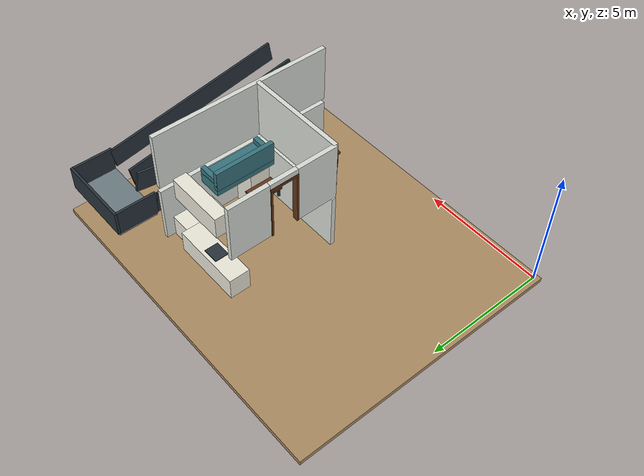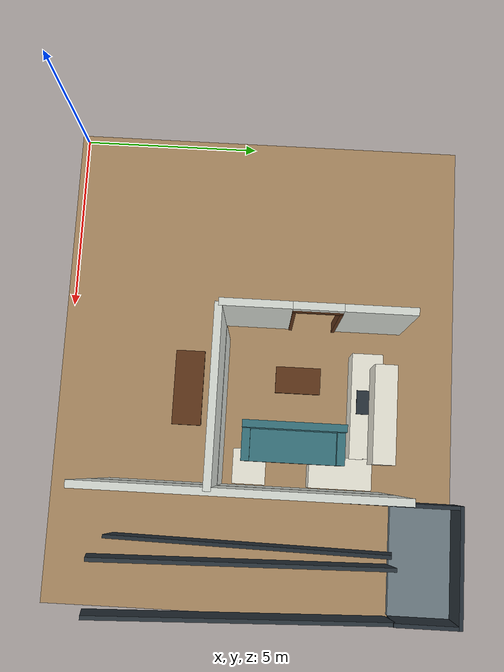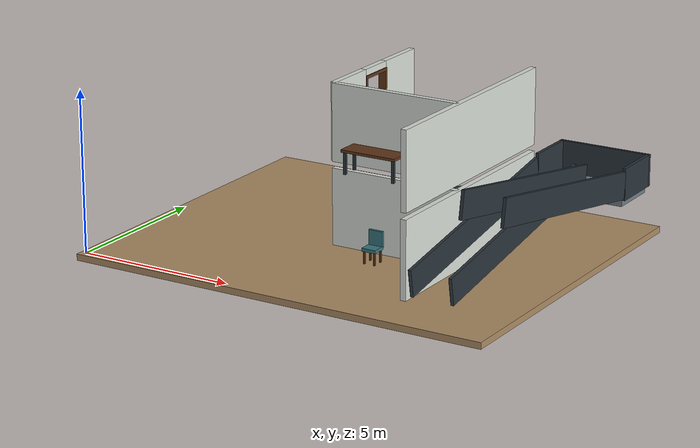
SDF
<sdf version="1.7">
 <model name="home_indoor">
  <static>true</static>
  <link name="floor_ground">
   <pose>6.6 5.4 -0.1 0 0 0</pose>
   <collision name="floor_ground_collision">
    <geometry><box><size>13.6 11.2 0.2</size></box></geometry>
    <surface><friction><ode><mu>1.0</mu><mu2>1.0</mu2></ode></friction></surface>
   </collision>
   <visual name="floor_ground_visual">
    <geometry><box><size>13.6 11.2 0.2</size></box></geometry>
    <material><ambient>0.68 0.55 0.39 1</ambient><diffuse>0.68 0.55 0.39 1</diffuse></material>
   </visual>
  </link>
  <link name="f0_ramp_door_north">
   <pose>10 5.215 1.2 0 0 0</pose>
   <collision name="f0_ramp_door_north_collision">
    <geometry><box><size>0.18 7.57 2.4</size></box></geometry>
    <surface><friction><ode><mu>1.0</mu><mu2>1.0</mu2></ode></friction></surface>
   </collision>
   <visual name="f0_ramp_door_north_visual">
    <geometry><box><size>0.18 7.57 2.4</size></box></geometry>
    <material><ambient>0.86 0.88 0.85 1</ambient><diffuse>0.86 0.88 0.85 1</diffuse></material>
   </visual>
  </link>
  <link name="f0_cross_wall_7.9">
   <pose>7.9 4.5 1.2 0 0 0</pose>
   <collision name="f0_cross_wall_7.9_collision">
    <geometry><box><size>4.2 0.18 2.4</size></box></geometry>
    <surface><friction><ode><mu>1.0</mu><mu2>1.0</mu2></ode></friction></surface>
   </collision>
   <visual name="f0_cross_wall_7.9_visual">
    <geometry><box><size>4.2 0.18 2.4</size></box></geometry>
    <material><ambient>0.86 0.88 0.85 1</ambient><diffuse>0.86 0.88 0.85 1</diffuse></material>
   </visual>
  </link>
  <link name="f1_ramp_door_north">
   <pose>10 5.215 3.8 0 0 0</pose>
   <collision name="f1_ramp_door_north_collision">
    <geometry><box><size>0.18 7.57 2.4</size></box></geometry>
    <surface><friction><ode><mu>1.0</mu><mu2>1.0</mu2></ode></friction></surface>
   </collision>
   <visual name="f1_ramp_door_north_visual">
    <geometry><box><size>0.18 7.57 2.4</size></box></geometry>
    <material><ambient>0.86 0.88 0.85 1</ambient><diffuse>0.86 0.88 0.85 1</diffuse></material>
   </visual>
  </link>
  <link name="f1_room_5.8_1_south">
   <pose>5.8 5.335 3.8 0 0 0</pose>
   <collision name="f1_room_5.8_1_south_collision">
    <geometry><box><size>0.18 1.67 2.4</size></box></geometry>
    <surface><friction><ode><mu>1.0</mu><mu2>1.0</mu2></ode></friction></surface>
   </collision>
   <visual name="f1_room_5.8_1_south_visual">
    <geometry><box><size>0.18 1.67 2.4</size></box></geometry>
    <material><ambient>0.86 0.88 0.85 1</ambient><diffuse>0.86 0.88 0.85 1</diffuse></material>
   </visual>
  </link>
  <link name="f1_room_5.8_1_north">
   <pose>5.8 8.165 3.8 0 0 0</pose>
   <collision name="f1_room_5.8_1_north_collision">
    <geometry><box><size>0.18 1.67 2.4</size></box></geometry>
    <surface><friction><ode><mu>1.0</mu><mu2>1.0</mu2></ode></friction></surface>
   </collision>
   <visual name="f1_room_5.8_1_north_visual">
    <geometry><box><size>0.18 1.67 2.4</size></box></geometry>
    <material><ambient>0.86 0.88 0.85 1</ambient><diffuse>0.86 0.88 0.85 1</diffuse></material>
   </visual>
  </link>
  <link name="f1_room_5.8_1_lintel">
   <pose>5.8 6.75 4.9 0 0 0</pose>
   <collision name="f1_room_5.8_1_lintel_collision">
    <geometry><box><size>0.18 1.16 0.2</size></box></geometry>
    <surface><friction><ode><mu>1.0</mu><mu2>1.0</mu2></ode></friction></surface>
   </collision>
   <visual name="f1_room_5.8_1_lintel_visual">
    <geometry><box><size>0.18 1.16 0.2</size></box></geometry>
    <material><ambient>0.86 0.88 0.85 1</ambient><diffuse>0.86 0.88 0.85 1</diffuse></material>
   </visual>
  </link>
  <link name="f1_room_5.8_1_jamb_-1">
   <pose>5.8 6.21 3.65 0 0 0</pose>
   <collision name="f1_room_5.8_1_jamb_-1_collision">
    <geometry><box><size>0.24 0.08 2.1</size></box></geometry>
    <surface><friction><ode><mu>1.0</mu><mu2>1.0</mu2></ode></friction></surface>
   </collision>
   <visual name="f1_room_5.8_1_jamb_-1_visual">
    <geometry><box><size>0.24 0.08 2.1</size></box></geometry>
    <material><ambient>0.38 0.21 0.10 1</ambient><diffuse>0.38 0.21 0.10 1</diffuse></material>
   </visual>
  </link>
  <link name="f1_room_5.8_1_jamb_1">
   <pose>5.8 7.29 3.65 0 0 0</pose>
   <collision name="f1_room_5.8_1_jamb_1_collision">
    <geometry><box><size>0.24 0.08 2.1</size></box></geometry>
    <surface><friction><ode><mu>1.0</mu><mu2>1.0</mu2></ode></friction></surface>
   </collision>
   <visual name="f1_room_5.8_1_jamb_1_visual">
    <geometry><box><size>0.24 0.08 2.1</size></box></geometry>
    <material><ambient>0.38 0.21 0.10 1</ambient><diffuse>0.38 0.21 0.10 1</diffuse></material>
   </visual>
  </link>
  <link name="f1_room_5.8_1_frame_top">
   <pose>5.8 6.75 4.75 0 0 0</pose>
   <collision name="f1_room_5.8_1_frame_top_collision">
    <geometry><box><size>0.24 1.16 0.1</size></box></geometry>
    <surface><friction><ode><mu>1.0</mu><mu2>1.0</mu2></ode></friction></surface>
   </collision>
   <visual name="f1_room_5.8_1_frame_top_visual">
    <geometry><box><size>0.24 1.16 0.1</size></box></geometry>
    <material><ambient>0.38 0.21 0.10 1</ambient><diffuse>0.38 0.21 0.10 1</diffuse></material>
   </visual>
  </link>
  <link name="f1_cross_wall_7.9">
   <pose>7.9 4.5 3.8 0 0 0</pose>
   <collision name="f1_cross_wall_7.9_collision">
    <geometry><box><size>4.2 0.18 2.4</size></box></geometry>
    <surface><friction><ode><mu>1.0</mu><mu2>1.0</mu2></ode></friction></surface>
   </collision>
   <visual name="f1_cross_wall_7.9_visual">
    <geometry><box><size>4.2 0.18 2.4</size></box></geometry>
    <material><ambient>0.86 0.88 0.85 1</ambient><diffuse>0.86 0.88 0.85 1</diffuse></material>
   </visual>
  </link>
  <link name="dining_chair_3_seat">
   <pose>7.65 3.65 0.44 0 0 0</pose>
   <collision name="dining_chair_3_seat_collision">
    <geometry><box><size>0.46 0.46 0.1</size></box></geometry>
    <surface><friction><ode><mu>1.0</mu><mu2>1.0</mu2></ode></friction></surface>
   </collision>
   <visual name="dining_chair_3_seat_visual">
    <geometry><box><size>0.46 0.46 0.1</size></box></geometry>
    <material><ambient>0.22 0.46 0.50 1</ambient><diffuse>0.22 0.46 0.50 1</diffuse></material>
   </visual>
  </link>
  <link name="dining_chair_3_back">
   <pose>7.65 3.85 0.7 0 0 0</pose>
   <collision name="dining_chair_3_back_collision">
    <geometry><box><size>0.46 0.08 0.5</size></box></geometry>
    <surface><friction><ode><mu>1.0</mu><mu2>1.0</mu2></ode></friction></surface>
   </collision>
   <visual name="dining_chair_3_back_visual">
    <geometry><box><size>0.46 0.08 0.5</size></box></geometry>
    <material><ambient>0.22 0.46 0.50 1</ambient><diffuse>0.22 0.46 0.50 1</diffuse></material>
   </visual>
  </link>
  <link name="dining_chair_3_leg_-1_-1">
   <pose>7.48 3.48 0.2 0 0 0</pose>
   <collision name="dining_chair_3_leg_-1_-1_collision">
    <geometry><box><size>0.05 0.05 0.4</size></box></geometry>
    <surface><friction><ode><mu>1.0</mu><mu2>1.0</mu2></ode></friction></surface>
   </collision>
   <visual name="dining_chair_3_leg_-1_-1_visual">
    <geometry><box><size>0.05 0.05 0.4</size></box></geometry>
    <material><ambient>0.38 0.21 0.10 1</ambient><diffuse>0.38 0.21 0.10 1</diffuse></material>
   </visual>
  </link>
  <link name="dining_chair_3_leg_-1_1">
   <pose>7.48 3.82 0.2 0 0 0</pose>
   <collision name="dining_chair_3_leg_-1_1_collision">
    <geometry><box><size>0.05 0.05 0.4</size></box></geometry>
    <surface><friction><ode><mu>1.0</mu><mu2>1.0</mu2></ode></friction></surface>
   </collision>
   <visual name="dining_chair_3_leg_-1_1_visual">
    <geometry><box><size>0.05 0.05 0.4</size></box></geometry>
    <material><ambient>0.38 0.21 0.10 1</ambient><diffuse>0.38 0.21 0.10 1</diffuse></material>
   </visual>
  </link>
  <link name="dining_chair_3_leg_1_-1">
   <pose>7.82 3.48 0.2 0 0 0</pose>
   <collision name="dining_chair_3_leg_1_-1_collision">
    <geometry><box><size>0.05 0.05 0.4</size></box></geometry>
    <surface><friction><ode><mu>1.0</mu><mu2>1.0</mu2></ode></friction></surface>
   </collision>
   <visual name="dining_chair_3_leg_1_-1_visual">
    <geometry><box><size>0.05 0.05 0.4</size></box></geometry>
    <material><ambient>0.38 0.21 0.10 1</ambient><diffuse>0.38 0.21 0.10 1</diffuse></material>
   </visual>
  </link>
  <link name="dining_chair_3_leg_1_1">
   <pose>7.82 3.82 0.2 0 0 0</pose>
   <collision name="dining_chair_3_leg_1_1_collision">
    <geometry><box><size>0.05 0.05 0.4</size></box></geometry>
    <surface><friction><ode><mu>1.0</mu><mu2>1.0</mu2></ode></friction></surface>
   </collision>
   <visual name="dining_chair_3_leg_1_1_visual">
    <geometry><box><size>0.05 0.05 0.4</size></box></geometry>
    <material><ambient>0.38 0.21 0.10 1</ambient><diffuse>0.38 0.21 0.10 1</diffuse></material>
   </visual>
  </link>
  <link name="kitchen_counter_north">
   <pose>7.6 8.45 0.46 0 0 0</pose>
   <collision name="kitchen_counter_north_collision">
    <geometry><box><size>2.9 0.85 0.92</size></box></geometry>
    <surface><friction><ode><mu>1.0</mu><mu2>1.0</mu2></ode></friction></surface>
   </collision>
   <visual name="kitchen_counter_north_visual">
    <geometry><box><size>2.9 0.85 0.92</size></box></geometry>
    <material><ambient>0.93 0.92 0.86 1</ambient><diffuse>0.93 0.92 0.86 1</diffuse></material>
   </visual>
  </link>
  <link name="kitchen_counter_east">
   <pose>9.45 7.8 0.46 0 0 0</pose>
   <collision name="kitchen_counter_east_collision">
    <geometry><box><size>0.85 1.7 0.92</size></box></geometry>
    <surface><friction><ode><mu>1.0</mu><mu2>1.0</mu2></ode></friction></surface>
   </collision>
   <visual name="kitchen_counter_east_visual">
    <geometry><box><size>0.85 1.7 0.92</size></box></geometry>
    <material><ambient>0.93 0.92 0.86 1</ambient><diffuse>0.93 0.92 0.86 1</diffuse></material>
   </visual>
  </link>
  <link name="fridge">
   <pose>9.4 5.35 0.95 0 0 0</pose>
   <collision name="fridge_collision">
    <geometry><box><size>0.9 0.85 1.9</size></box></geometry>
    <surface><friction><ode><mu>1.0</mu><mu2>1.0</mu2></ode></friction></surface>
   </collision>
   <visual name="fridge_visual">
    <geometry><box><size>0.9 0.85 1.9</size></box></geometry>
    <material><ambient>0.93 0.92 0.86 1</ambient><diffuse>0.93 0.92 0.86 1</diffuse></material>
   </visual>
  </link>
  <link name="sink">
   <pose>7.5 8.45 0.93 0 0 0</pose>
   <collision name="sink_collision">
    <geometry><box><size>0.65 0.55 0.04</size></box></geometry>
    <surface><friction><ode><mu>1.0</mu><mu2>1.0</mu2></ode></friction></surface>
   </collision>
   <visual name="sink_visual">
    <geometry><box><size>0.65 0.55 0.04</size></box></geometry>
    <material><ambient>0.16 0.20 0.23 1</ambient><diffuse>0.16 0.20 0.23 1</diffuse></material>
   </visual>
  </link>
  <link name="study_desk_top">
   <pose>7.6 3.8 3.32 0 0 0</pose>
   <collision name="study_desk_top_collision">
    <geometry><box><size>1.8 0.7 0.08</size></box></geometry>
    <surface><friction><ode><mu>1.0</mu><mu2>1.0</mu2></ode></friction></surface>
   </collision>
   <visual name="study_desk_top_visual">
    <geometry><box><size>1.8 0.7 0.08</size></box></geometry>
    <material><ambient>0.38 0.21 0.10 1</ambient><diffuse>0.38 0.21 0.10 1</diffuse></material>
   </visual>
  </link>
  <link name="study_desk_leg_-1_-1">
   <pose>6.79 3.54 2.94 0 0 0</pose>
   <collision name="study_desk_leg_-1_-1_collision">
    <geometry><box><size>0.08 0.08 0.68</size></box></geometry>
    <surface><friction><ode><mu>1.0</mu><mu2>1.0</mu2></ode></friction></surface>
   </collision>
   <visual name="study_desk_leg_-1_-1_visual">
    <geometry><box><size>0.08 0.08 0.68</size></box></geometry>
    <material><ambient>0.16 0.20 0.23 1</ambient><diffuse>0.16 0.20 0.23 1</diffuse></material>
   </visual>
  </link>
  <link name="study_desk_leg_-1_1">
   <pose>6.79 4.06 2.94 0 0 0</pose>
   <collision name="study_desk_leg_-1_1_collision">
    <geometry><box><size>0.08 0.08 0.68</size></box></geometry>
    <surface><friction><ode><mu>1.0</mu><mu2>1.0</mu2></ode></friction></surface>
   </collision>
   <visual name="study_desk_leg_-1_1_visual">
    <geometry><box><size>0.08 0.08 0.68</size></box></geometry>
    <material><ambient>0.16 0.20 0.23 1</ambient><diffuse>0.16 0.20 0.23 1</diffuse></material>
   </visual>
  </link>
  <link name="study_desk_leg_1_-1">
   <pose>8.41 3.54 2.94 0 0 0</pose>
   <collision name="study_desk_leg_1_-1_collision">
    <geometry><box><size>0.08 0.08 0.68</size></box></geometry>
    <surface><friction><ode><mu>1.0</mu><mu2>1.0</mu2></ode></friction></surface>
   </collision>
   <visual name="study_desk_leg_1_-1_visual">
    <geometry><box><size>0.08 0.08 0.68</size></box></geometry>
    <material><ambient>0.16 0.20 0.23 1</ambient><diffuse>0.16 0.20 0.23 1</diffuse></material>
   </visual>
  </link>
  <link name="study_desk_leg_1_1">
   <pose>8.41 4.06 2.94 0 0 0</pose>
   <collision name="study_desk_leg_1_1_collision">
    <geometry><box><size>0.08 0.08 0.68</size></box></geometry>
    <surface><friction><ode><mu>1.0</mu><mu2>1.0</mu2></ode></friction></surface>
   </collision>
   <visual name="study_desk_leg_1_1_visual">
    <geometry><box><size>0.08 0.08 0.68</size></box></geometry>
    <material><ambient>0.16 0.20 0.23 1</ambient><diffuse>0.16 0.20 0.23 1</diffuse></material>
   </visual>
  </link>
  <link name="lounge_sofa_base">
   <pose>8.8 6.4 2.84 0 0 0</pose>
   <collision name="lounge_sofa_base_collision">
    <geometry><box><size>0.95 2.5 0.48</size></box></geometry>
    <surface><friction><ode><mu>1.0</mu><mu2>1.0</mu2></ode></friction></surface>
   </collision>
   <visual name="lounge_sofa_base_visual">
    <geometry><box><size>0.95 2.5 0.48</size></box></geometry>
    <material><ambient>0.22 0.46 0.50 1</ambient><diffuse>0.22 0.46 0.50 1</diffuse></material>
   </visual>
  </link>
  <link name="lounge_sofa_back">
   <pose>8.4 6.4 3.24 0 0 0</pose>
   <collision name="lounge_sofa_back_collision">
    <geometry><box><size>0.18 2.5 0.8</size></box></geometry>
    <surface><friction><ode><mu>1.0</mu><mu2>1.0</mu2></ode></friction></surface>
   </collision>
   <visual name="lounge_sofa_back_visual">
    <geometry><box><size>0.18 2.5 0.8</size></box></geometry>
    <material><ambient>0.22 0.46 0.50 1</ambient><diffuse>0.22 0.46 0.50 1</diffuse></material>
   </visual>
  </link>
  <link name="lounge_sofa_arm_-1.15">
   <pose>8.8 5.25 3.08 0 0 0</pose>
   <collision name="lounge_sofa_arm_-1.15_collision">
    <geometry><box><size>0.95 0.2 0.4</size></box></geometry>
    <surface><friction><ode><mu>1.0</mu><mu2>1.0</mu2></ode></friction></surface>
   </collision>
   <visual name="lounge_sofa_arm_-1.15_visual">
    <geometry><box><size>0.95 0.2 0.4</size></box></geometry>
    <material><ambient>0.22 0.46 0.50 1</ambient><diffuse>0.22 0.46 0.50 1</diffuse></material>
   </visual>
  </link>
  <link name="lounge_sofa_arm_1.15">
   <pose>8.8 7.55 3.08 0 0 0</pose>
   <collision name="lounge_sofa_arm_1.15_collision">
    <geometry><box><size>0.95 0.2 0.4</size></box></geometry>
    <surface><friction><ode><mu>1.0</mu><mu2>1.0</mu2></ode></friction></surface>
   </collision>
   <visual name="lounge_sofa_arm_1.15_visual">
    <geometry><box><size>0.95 0.2 0.4</size></box></geometry>
    <material><ambient>0.22 0.46 0.50 1</ambient><diffuse>0.22 0.46 0.50 1</diffuse></material>
   </visual>
  </link>
  <link name="lounge_coffee_top">
   <pose>7.25 6.45 2.98 0 0 0</pose>
   <collision name="lounge_coffee_top_collision">
    <geometry><box><size>0.65 1.1 0.08</size></box></geometry>
    <surface><friction><ode><mu>1.0</mu><mu2>1.0</mu2></ode></friction></surface>
   </collision>
   <visual name="lounge_coffee_top_visual">
    <geometry><box><size>0.65 1.1 0.08</size></box></geometry>
    <material><ambient>0.38 0.21 0.10 1</ambient><diffuse>0.38 0.21 0.10 1</diffuse></material>
   </visual>
  </link>
  <link name="lounge_coffee_leg_-1_-1">
   <pose>7.015 5.99 2.77 0 0 0</pose>
   <collision name="lounge_coffee_leg_-1_-1_collision">
    <geometry><box><size>0.08 0.08 0.34</size></box></geometry>
    <surface><friction><ode><mu>1.0</mu><mu2>1.0</mu2></ode></friction></surface>
   </collision>
   <visual name="lounge_coffee_leg_-1_-1_visual">
    <geometry><box><size>0.08 0.08 0.34</size></box></geometry>
    <material><ambient>0.16 0.20 0.23 1</ambient><diffuse>0.16 0.20 0.23 1</diffuse></material>
   </visual>
  </link>
  <link name="lounge_coffee_leg_-1_1">
   <pose>7.015 6.91 2.77 0 0 0</pose>
   <collision name="lounge_coffee_leg_-1_1_collision">
    <geometry><box><size>0.08 0.08 0.34</size></box></geometry>
    <surface><friction><ode><mu>1.0</mu><mu2>1.0</mu2></ode></friction></surface>
   </collision>
   <visual name="lounge_coffee_leg_-1_1_visual">
    <geometry><box><size>0.08 0.08 0.34</size></box></geometry>
    <material><ambient>0.16 0.20 0.23 1</ambient><diffuse>0.16 0.20 0.23 1</diffuse></material>
   </visual>
  </link>
  <link name="lounge_coffee_leg_1_-1">
   <pose>7.485 5.99 2.77 0 0 0</pose>
   <collision name="lounge_coffee_leg_1_-1_collision">
    <geometry><box><size>0.08 0.08 0.34</size></box></geometry>
    <surface><friction><ode><mu>1.0</mu><mu2>1.0</mu2></ode></friction></surface>
   </collision>
   <visual name="lounge_coffee_leg_1_-1_visual">
    <geometry><box><size>0.08 0.08 0.34</size></box></geometry>
    <material><ambient>0.16 0.20 0.23 1</ambient><diffuse>0.16 0.20 0.23 1</diffuse></material>
   </visual>
  </link>
  <link name="lounge_coffee_leg_1_1">
   <pose>7.485 6.91 2.77 0 0 0</pose>
   <collision name="lounge_coffee_leg_1_1_collision">
    <geometry><box><size>0.08 0.08 0.34</size></box></geometry>
    <surface><friction><ode><mu>1.0</mu><mu2>1.0</mu2></ode></friction></surface>
   </collision>
   <visual name="lounge_coffee_leg_1_1_visual">
    <geometry><box><size>0.08 0.08 0.34</size></box></geometry>
    <material><ambient>0.16 0.20 0.23 1</ambient><diffuse>0.16 0.20 0.23 1</diffuse></material>
   </visual>
  </link>
  <link name="lounge_cabinet">
   <pose>8 8.55 3.05 0 0 0</pose>
   <collision name="lounge_cabinet_collision">
    <geometry><box><size>2.4 0.55 0.9</size></box></geometry>
    <surface><friction><ode><mu>1.0</mu><mu2>1.0</mu2></ode></friction></surface>
   </collision>
   <visual name="lounge_cabinet_visual">
    <geometry><box><size>2.4 0.55 0.9</size></box></geometry>
    <material><ambient>0.93 0.92 0.86 1</ambient><diffuse>0.93 0.92 0.86 1</diffuse></material>
   </visual>
  </link>
  <link name="ramp_lower_guard_0">
   <pose>10.15 5.35 1.13 0.17162807 0 0</pose>
   <collision name="ramp_lower_guard_0_collision">
    <geometry><box><size>0.1 7.6118329 0.85</size></box></geometry>
    <surface><friction><ode><mu>1.0</mu><mu2>1.0</mu2></ode></friction></surface>
   </collision>
   <visual name="ramp_lower_guard_0_visual">
    <geometry><box><size>0.1 7.6118329 0.85</size></box></geometry>
    <material><ambient>0.16 0.20 0.23 1</ambient><diffuse>0.16 0.20 0.23 1</diffuse></material>
   </visual>
  </link>
  <link name="ramp_lower_guard_1">
   <pose>11.45 5.35 1.13 0.17162807 0 0</pose>
   <collision name="ramp_lower_guard_1_collision">
    <geometry><box><size>0.1 7.6118329 0.85</size></box></geometry>
    <surface><friction><ode><mu>1.0</mu><mu2>1.0</mu2></ode></friction></surface>
   </collision>
   <visual name="ramp_lower_guard_1_visual">
    <geometry><box><size>0.1 7.6118329 0.85</size></box></geometry>
    <material><ambient>0.16 0.20 0.23 1</ambient><diffuse>0.16 0.20 0.23 1</diffuse></material>
   </visual>
  </link>
  <link name="ramp_upper_guard_0">
   <pose>11.75 5.35 2.43 -0.17162807 0 0</pose>
   <collision name="ramp_upper_guard_0_collision">
    <geometry><box><size>0.1 7.6118329 0.85</size></box></geometry>
    <surface><friction><ode><mu>1.0</mu><mu2>1.0</mu2></ode></friction></surface>
   </collision>
   <visual name="ramp_upper_guard_0_visual">
    <geometry><box><size>0.1 7.6118329 0.85</size></box></geometry>
    <material><ambient>0.16 0.20 0.23 1</ambient><diffuse>0.16 0.20 0.23 1</diffuse></material>
   </visual>
  </link>
  <link name="ramp_upper_guard_1">
   <pose>13.05 5.35 2.43 -0.17162807 0 0</pose>
   <collision name="ramp_upper_guard_1_collision">
    <geometry><box><size>0.1 7.6118329 0.85</size></box></geometry>
    <surface><friction><ode><mu>1.0</mu><mu2>1.0</mu2></ode></friction></surface>
   </collision>
   <visual name="ramp_upper_guard_1_visual">
    <geometry><box><size>0.1 7.6118329 0.85</size></box></geometry>
    <material><ambient>0.16 0.20 0.23 1</ambient><diffuse>0.16 0.20 0.23 1</diffuse></material>
   </visual>
  </link>
  <link name="landing_middle">
   <pose>11.6 9.9 1.2 0 0 0</pose>
   <collision name="landing_middle_collision">
    <geometry><box><size>2.8 1.6 0.2</size></box></geometry>
    <surface><friction><ode><mu>1.0</mu><mu2>1.0</mu2></ode></friction></surface>
   </collision>
   <visual name="landing_middle_visual">
    <geometry><box><size>2.8 1.6 0.2</size></box></geometry>
    <material><ambient>0.43 0.49 0.52 1</ambient><diffuse>0.43 0.49 0.52 1</diffuse></material>
   </visual>
  </link>
  <link name="middle_end_guard">
   <pose>11.6 10.75 1.8 0 0 0</pose>
   <collision name="middle_end_guard_collision">
    <geometry><box><size>3 0.1 1</size></box></geometry>
    <surface><friction><ode><mu>1.0</mu><mu2>1.0</mu2></ode></friction></surface>
   </collision>
   <visual name="middle_end_guard_visual">
    <geometry><box><size>3 0.1 1</size></box></geometry>
    <material><ambient>0.16 0.20 0.23 1</ambient><diffuse>0.16 0.20 0.23 1</diffuse></material>
   </visual>
  </link>
  <link name="middle_side_guard_10.15">
   <pose>10.15 9.9 1.8 0 0 0</pose>
   <collision name="middle_side_guard_10.15_collision">
    <geometry><box><size>0.1 1.6 1</size></box></geometry>
    <surface><friction><ode><mu>1.0</mu><mu2>1.0</mu2></ode></friction></surface>
   </collision>
   <visual name="middle_side_guard_10.15_visual">
    <geometry><box><size>0.1 1.6 1</size></box></geometry>
    <material><ambient>0.16 0.20 0.23 1</ambient><diffuse>0.16 0.20 0.23 1</diffuse></material>
   </visual>
  </link>
  <link name="middle_side_guard_13.05">
   <pose>13.05 9.9 1.8 0 0 0</pose>
   <collision name="middle_side_guard_13.05_collision">
    <geometry><box><size>0.1 1.6 1</size></box></geometry>
    <surface><friction><ode><mu>1.0</mu><mu2>1.0</mu2></ode></friction></surface>
   </collision>
   <visual name="middle_side_guard_13.05_visual">
    <geometry><box><size>0.1 1.6 1</size></box></geometry>
    <material><ambient>0.16 0.20 0.23 1</ambient><diffuse>0.16 0.20 0.23 1</diffuse></material>
   </visual>
  </link>
 </model>
</sdf>
